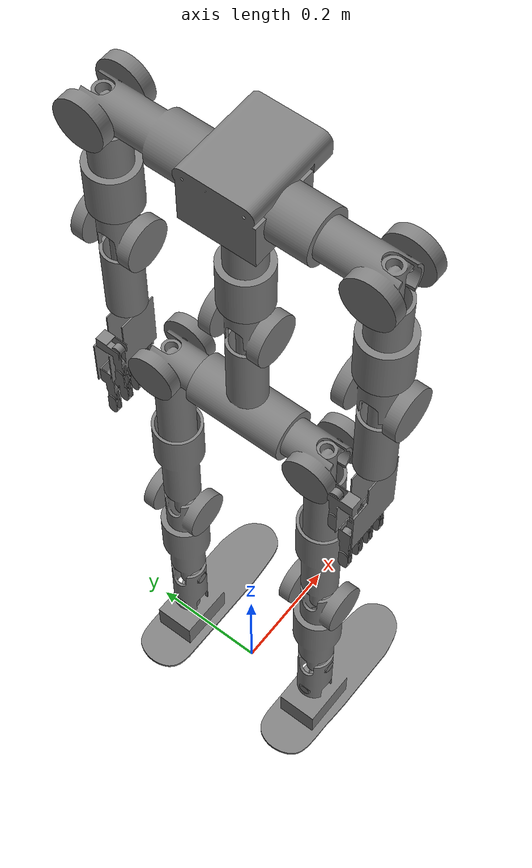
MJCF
<mujoco model="walka">
  <compiler angle="radian" meshdir="assets" />
  <asset>
    <mesh name="Circle_007" file="Circle_007.obj" />
    <mesh name="Circle_023" file="Circle_023.obj" />
    <mesh name="Circle_029" file="Circle_029.obj" />
    <mesh name="Circle_031" file="Circle_031.obj" />
    <mesh name="Circle_016" file="Circle_016.obj" />
    <mesh name="Circle_032" file="Circle_032.obj" />
    <mesh name="Circle_017" file="Circle_017.obj" />
    <mesh name="Cube_001" file="Cube_001.obj" />
    <mesh name="Cube_004" file="Cube_004.obj" />
    <mesh name="Circle_033" file="Circle_033.obj" />
    <mesh name="Circle_019" file="Circle_019.obj" />
    <mesh name="Cube_002" file="Cube_002.obj" />
    <mesh name="Cube_026" file="Cube_026.obj" />
    <mesh name="Cube_008" file="Cube_008.obj" />
    <mesh name="Circle_025" file="Circle_025.obj" />
    <mesh name="Circle_030" file="Circle_030.obj" />
    <mesh name="Circle_026" file="Circle_026.obj" />
    <mesh name="Circle_001" file="Circle_001.obj" />
    <mesh name="Circle_005" file="Circle_005.obj" />
    <mesh name="Circle_028" file="Circle_028.obj" />
    <mesh name="Circle_004" file="Circle_004.obj" />
    <mesh name="Circle_034" file="Circle_034.obj" />
    <mesh name="Circle_021" file="Circle_021.obj" />
    <mesh name="Circle_010" file="Circle_010.obj" />
    <mesh name="Circle_024" file="Circle_024.obj" />
    <mesh name="Circle_055" file="Circle_055.obj" />
    <mesh name="Circle_027" file="Circle_027.obj" />
    <mesh name="Circle_003" file="Circle_003.obj" />
  </asset>
  <worldbody>
    <body name="pelvis" pos="0 0 0.832">
      <freejoint name="floating_base_joint" />
      <geom type="mesh" mesh="Circle_005" name="pelvis_collision" />
      <body name="pelvisL" pos="0 0.138 1e-07">
        <joint name="L_pitch_hip_joint" pos="0 0 0" axis="0 1 0" range="-3.14159 0" />
        <geom type="mesh" mesh="Circle_028" name="pelvisL_collision" />
        <body name="upperFemurL">
          <joint name="L_roll_hip_joint" pos="0 0 0" axis="1 0 0" range="-0.523599 1.5708" />
          <geom type="mesh" mesh="Circle_027" name="upperFemurL_collision" />
          <body name="lowerFemurL" pos="0 0 -0.415">
            <joint name="L_yaw_hip_joint" pos="0 0 0" axis="0 0 1" range="0 3.14159" />
            <geom type="mesh" mesh="Circle_026" name="lowerFemurL_collision" />
            <body name="kneeL" pos="0 0 -3e-07">
              <joint name="L_pitch_knee_joint" pos="0 0 0" axis="0 1 0" range="-0.174533 2.79253" />
              <geom type="mesh" mesh="Circle_025" name="kneeL_collision" />
              <geom type="mesh" mesh="Circle_024" pos="0.0 0.0 -0.248" name="kneeL_collision_1" />
              <body name="ankleL" pos="0.0 0.0 -0.2480001">
                <joint name="L_pitch_ankle_joint" pos="0 0 0" axis="0 1 0" range="-1.0472 1.0472" />
                <geom type="mesh" mesh="Circle_023" name="ankleL_collision" />
                <body name="footL" pos="0 0 -0.0809999">
                  <joint name="L_roll_ankle_joint" pos="0 0 0" axis="1 0 0" range="-0.523599 0.523599" />
                  <geom type="mesh" mesh="Cube_001" name="footL_collision" />
                  <site name="footL" pos="0.05 0 -0.099" />
                </body>
              </body>
            </body>
          </body>
        </body>
      </body>
      <body name="pelvisR" pos="0 -0.138 1e-07">
        <joint name="R_pitch_hip_joint" pos="0 0 0" axis="0 1 0" range="-3.14159 0" />
        <geom type="mesh" mesh="Circle_004" name="pelvisR_collision" />
        <body name="upperFemurR">
          <joint name="R_roll_hip_joint" pos="0 0 0" axis="1 0 0" range="-1.5708 0.523599" />
          <geom type="mesh" mesh="Circle_003" name="upperFemurR_collision" />
          <body name="lowerFemurR" pos="0 0 -0.415">
            <joint name="R_yaw_hip_joint" pos="0 0 0" axis="0 0 1" range="-1.5708 1.5708" />
            <geom type="mesh" mesh="Circle_001" name="lowerFemurR_collision" />
            <body name="kneeR" pos="0 0 -3e-07">
              <joint name="R_pitch_knee_joint" pos="0 0 0" axis="0 1 0" range="-0.174533 2.79253" />
              <geom type="mesh" mesh="Circle_030" name="kneeR_collision" />
              <geom type="mesh" mesh="Circle_055" pos="0.0 0.0 -0.248" name="kneeR_collision_1" />
              <body name="ankleR" pos="0.0 0.0 -0.2480001">
                <joint name="R_pitch_ankle_joint" pos="0 0 0" axis="0 1 0" range="-1.0472 1.0472" />
                <geom type="mesh" mesh="Circle_029" name="ankleR_collision" />
                <body name="footR" pos="0 0 -0.0809999">
                  <joint name="R_roll_ankle_joint" pos="0 0 0" axis="1 0 0" range="-0.523599 0.523599" />
                  <geom type="mesh" mesh="Cube_004" name="footR_collision" />
                  <site name="footR" pos="0.05 0 -0.099" />
                </body>
              </body>
            </body>
          </body>
        </body>
      </body>
      <body name="abdomen" pos="0 0 0.205">
        <joint name="pitch_waist_joint" pos="0 0 0" axis="0 1 0" range="-1.5708 1.5708" />
        <geom type="mesh" mesh="Circle_007" name="abdomen_collision" />
        <body name="thorax" pos="0 0 0.123">
          <joint name="yaw_waist_joint" pos="0 0 0" axis="0 0 1" range="-3.14159 3.14159" />
          <geom type="mesh" mesh="Circle_010" name="thorax_collision" />
          <geom type="mesh" mesh="Cube_008" name="thorax_collision_1" />
          <body name="shoulderL" pos="0 0.2155 0.155">
            <joint name="L_pitch_shoulder_joint" pos="0 0 0" axis="0 1 0" range="-3.14159 3.14159" />
            <geom type="mesh" mesh="Circle_034" name="shoulderL_collision" />
            <body name="armL" pos="0 0 -1e-07">
              <joint name="L_roll_shoulder_joint" pos="0 0 0" axis="1 0 0" range="0 3.14159" />
              <geom type="mesh" mesh="Circle_031" name="armL_collision" />
              <body name="elbowL" pos="0 0 -0.248">
                <joint name="L_yaw_shoulder_joint" pos="0 0 0" axis="0 0 1" range="-3.14159 3.14159" />
                <geom type="mesh" mesh="Circle_032" name="elbowL_collision" />
                <body name="forearmL">
                  <joint name="L_pitch_elbow_joint" pos="0 0 0" axis="0 1 0" range="-2.0944 2.0944" />
                  <geom type="mesh" mesh="Circle_033" name="forearmL_collision" />
                  <body name="handL" pos="-2e-07 0 -0.105">
                    <joint name="L_yaw_wrist_joint" pos="0 0 0" axis="0 0 1" range="-3.14159 3.14159" />
                    <geom type="mesh" mesh="Cube_002" name="handL_collision" />
                  </body>
                </body>
              </body>
            </body>
          </body>
          <body name="shoulderR" pos="0 -0.2155 0.155">
            <joint name="R_pitch_shoulder_joint" pos="0 0 0" axis="0 1 0" range="-3.14159 3.14159" />
            <geom type="mesh" mesh="Circle_021" name="shoulderR_collision" />
            <body name="armR" pos="0 0 -2e-07">
              <joint name="R_roll_shoulder_joint" pos="0 0 0" axis="1 0 0" range="-3.14159 0" />
              <geom type="mesh" mesh="Circle_016" name="armR_collision" />
              <body name="elbowR" pos="0 0 -0.248">
                <joint name="R_yaw_shoulder_joint" pos="0 0 0" axis="0 0 1" range="-3.14159 3.14159" />
                <geom type="mesh" mesh="Circle_017" name="elbowR_collision" />
                <body name="forearmR">
                  <joint name="R_pitch_elbow_joint" pos="0 0 0" axis="0 1 0" range="-2.0944 2.0944" />
                  <geom type="mesh" mesh="Circle_019" name="forearmR_collision" />
                  <body name="handR" pos="-2e-07 0 -0.105">
                    <joint name="R_yaw_wrist_joint" pos="0 0 0" axis="0 0 1" range="-3.14159 3.14159" />
                    <geom type="mesh" mesh="Cube_026" name="handR_collision" />
                  </body>
                </body>
              </body>
            </body>
          </body>
        </body>
      </body>
      <site name="imu_in_pelvis" size="0.01" pos="0 0 0" />
    </body>
  </worldbody>
  <sensor>
    <gyro name="imu_ang_vel" site="imu_in_pelvis" />
    <velocimeter name="imu_lin_vel" site="imu_in_pelvis" />
    <accelerometer name="imu_lin_acc" site="imu_in_pelvis" />
    <subtreeangmom name="root_angmom" body="pelvis" />
  </sensor>
  <contact>
    <exclude body1="abdomen" body2="pelvis" />
    <exclude body1="pelvis" body2="pelvisL" />
    <exclude body1="pelvis" body2="pelvisR" />
  </contact>
</mujoco>
